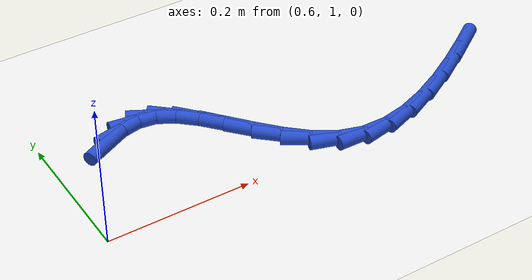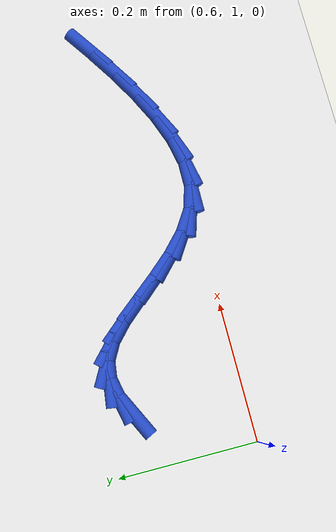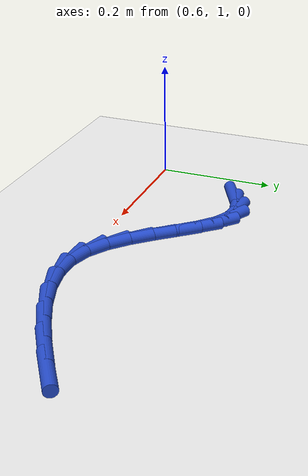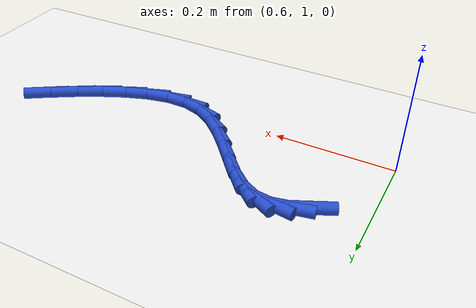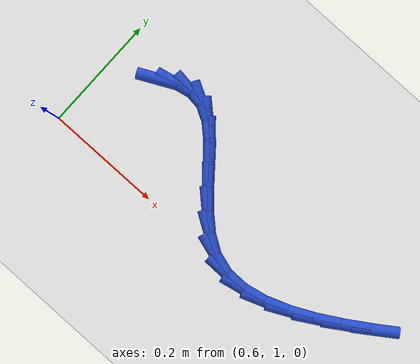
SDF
<sdf version="1.6">
 <world name="default">
  <model name="ground_plane">
   <static>1</static>
   <link name="link">
    <collision name="collision">
     <geometry><plane><normal>0 0 1</normal><size>100 100</size></plane></geometry>
     <surface><friction><ode><mu>100</mu><mu2>50</mu2></ode></friction></surface>
    </collision>
    <visual name="visual">
     <cast_shadows>0</cast_shadows>
     <geometry><plane><normal>0 0 1</normal><size>100 100</size></plane></geometry>
     <material>
      <script><uri>file://media/materials/scripts/gazebo.material</uri><name>Gazebo/WhiteGlow</name></script>
     </material>
    </visual>
   </link>
  </model>
  <model name="line">
   <link name="link_38">
    <pose>0.682273726670328 1.1586608633432824 0.01 0 1.57 0.45927800787577494</pose>
    <collision name="collision">
     <geometry><cylinder><radius>0.01</radius><length>0.08</length></cylinder></geometry>
    </collision>
    <visual name="visual">
     <material>
      <script><name>Gazebo/Blue</name><uri>file://media/materials/scripts/gazebo.material</uri></script>
     </material>
     <geometry><cylinder><radius>0.01</radius><length>0.08</length></cylinder></geometry>
    </visual>
   </link>
   <link name="link_39">
    <pose>0.7093233291121132 1.1720382407509526 0.01 0 1.57 0.20950914462414016</pose>
    <collision name="collision">
     <geometry><cylinder><radius>0.01</radius><length>0.08</length></cylinder></geometry>
    </collision>
    <visual name="visual">
     <material>
      <script><name>Gazebo/Blue</name><uri>file://media/materials/scripts/gazebo.material</uri></script>
     </material>
     <geometry><cylinder><radius>0.01</radius><length>0.08</length></cylinder></geometry>
    </visual>
   </link>
   <link name="link_40">
    <pose>0.7356015378231455 1.1776257590105468 0.01 0 1.57 -0.13529735880801397</pose>
    <collision name="collision">
     <geometry><cylinder><radius>0.01</radius><length>0.08</length></cylinder></geometry>
    </collision>
    <visual name="visual">
     <material>
      <script><name>Gazebo/Blue</name><uri>file://media/materials/scripts/gazebo.material</uri></script>
     </material>
     <geometry><cylinder><radius>0.01</radius><length>0.08</length></cylinder></geometry>
    </visual>
   </link>
   <link name="link_41">
    <pose>0.7610194580868641 1.1741656428136353 0.01 0 1.57 -0.5036402263211666</pose>
    <collision name="collision">
     <geometry><cylinder><radius>0.01</radius><length>0.08</length></cylinder></geometry>
    </collision>
    <visual name="visual">
     <material>
      <script><name>Gazebo/Blue</name><uri>file://media/materials/scripts/gazebo.material</uri></script>
     </material>
     <geometry><cylinder><radius>0.01</radius><length>0.08</length></cylinder></geometry>
    </visual>
   </link>
   <link name="link_42">
    <pose>0.7855310765392158 1.1606587956814365 0.01 0 1.57 -0.7426309171887576</pose>
    <collision name="collision">
     <geometry><cylinder><radius>0.01</radius><length>0.08</length></cylinder></geometry>
    </collision>
    <visual name="visual">
     <material>
      <script><name>Gazebo/Blue</name><uri>file://media/materials/scripts/gazebo.material</uri></script>
     </material>
     <geometry><cylinder><radius>0.01</radius><length>0.08</length></cylinder></geometry>
    </visual>
   </link>
   <link name="link_43">
    <pose>0.8095115075055871 1.1386465451531964 0.01 0 1.57 -0.8525757150796696</pose>
    <collision name="collision">
     <geometry><cylinder><radius>0.01</radius><length>0.08</length></cylinder></geometry>
    </collision>
    <visual name="visual">
     <material>
      <script><name>Gazebo/Blue</name><uri>file://media/materials/scripts/gazebo.material</uri></script>
     </material>
     <geometry><cylinder><radius>0.01</radius><length>0.08</length></cylinder></geometry>
    </visual>
   </link>
   <link name="link_44">
    <pose>0.8335748311029957 1.1111117635817012 0.01 0 1.57 -0.8816843196345426</pose>
    <collision name="collision">
     <geometry><cylinder><radius>0.01</radius><length>0.08</length></cylinder></geometry>
    </collision>
    <visual name="visual">
     <material>
      <script><name>Gazebo/Blue</name><uri>file://media/materials/scripts/gazebo.material</uri></script>
     </material>
     <geometry><cylinder><radius>0.01</radius><length>0.08</length></cylinder></geometry>
    </visual>
   </link>
   <link name="link_45">
    <pose>0.8583378680032573 1.0810538555293325 0.01 0 1.57 -0.8482327573708495</pose>
    <collision name="collision">
     <geometry><cylinder><radius>0.01</radius><length>0.08</length></cylinder></geometry>
    </collision>
    <visual name="visual">
     <material>
      <script><name>Gazebo/Blue</name><uri>file://media/materials/scripts/gazebo.material</uri></script>
     </material>
     <geometry><cylinder><radius>0.01</radius><length>0.08</length></cylinder></geometry>
    </visual>
   </link>
   <link name="link_46">
    <pose>0.8844174388781867 1.0514722255584716 0.01 0 1.57 -0.7501758938900057</pose>
    <collision name="collision">
     <geometry><cylinder><radius>0.01</radius><length>0.08</length></cylinder></geometry>
    </collision>
    <visual name="visual">
     <material>
      <script><name>Gazebo/Blue</name><uri>file://media/materials/scripts/gazebo.material</uri></script>
     </material>
     <geometry><cylinder><radius>0.01</radius><length>0.08</length></cylinder></geometry>
    </visual>
   </link>
   <link name="link_47">
    <pose>0.9124303643995991 1.0253662782315007 0.01 0 1.57 -0.5709473359176263</pose>
    <collision name="collision">
     <geometry><cylinder><radius>0.01</radius><length>0.08</length></cylinder></geometry>
    </collision>
    <visual name="visual">
     <material>
      <script><name>Gazebo/Blue</name><uri>file://media/materials/scripts/gazebo.material</uri></script>
     </material>
     <geometry><cylinder><radius>0.01</radius><length>0.08</length></cylinder></geometry>
    </visual>
   </link>
   <link name="link_48">
    <pose>0.9429934652393098 1.005735418110801 0.01 0 1.57 -0.2962546962150804</pose>
    <collision name="collision">
     <geometry><cylinder><radius>0.01</radius><length>0.08</length></cylinder></geometry>
    </collision>
    <visual name="visual">
     <material>
      <script><name>Gazebo/Blue</name><uri>file://media/materials/scripts/gazebo.material</uri></script>
     </material>
     <geometry><cylinder><radius>0.01</radius><length>0.08</length></cylinder></geometry>
    </visual>
   </link>
   <link name="link_49">
    <pose>0.9766861403617633 0.9954511572135784 0.01 0 1.57 -0.010365268480151535</pose>
    <collision name="collision">
     <geometry><cylinder><radius>0.01</radius><length>0.08</length></cylinder></geometry>
    </collision>
    <visual name="visual">
     <material>
      <script><name>Gazebo/Blue</name><uri>file://media/materials/scripts/gazebo.material</uri></script>
     </material>
     <geometry><cylinder><radius>0.01</radius><length>0.08</length></cylinder></geometry>
    </visual>
   </link>
   <link name="link_50">
    <pose>1.0134105531747455 0.9950704851819173 0.01 0 1.57 0.2036394699474693</pose>
    <collision name="collision">
     <geometry><cylinder><radius>0.01</radius><length>0.08</length></cylinder></geometry>
    </collision>
    <visual name="visual">
     <material>
      <script><name>Gazebo/Blue</name><uri>file://media/materials/scripts/gazebo.material</uri></script>
     </material>
     <geometry><cylinder><radius>0.01</radius><length>0.08</length></cylinder></geometry>
    </visual>
   </link>
   <link name="link_51">
    <pose>1.0524801623681805 1.0031384325567623 0.01 0 1.57 0.35291821953378505</pose>
    <collision name="collision">
     <geometry><cylinder><radius>0.01</radius><length>0.08</length></cylinder></geometry>
    </collision>
    <visual name="visual">
     <material>
      <script><name>Gazebo/Blue</name><uri>file://media/materials/scripts/gazebo.material</uri></script>
     </material>
     <geometry><cylinder><radius>0.01</radius><length>0.08</length></cylinder></geometry>
    </visual>
   </link>
   <link name="link_52">
    <pose>1.0931888201002586 1.018133022534349 0.01 0 1.57 0.45551673510175417</pose>
    <collision name="collision">
     <geometry><cylinder><radius>0.01</radius><length>0.08</length></cylinder></geometry>
    </collision>
    <visual name="visual">
     <material>
      <script><name>Gazebo/Blue</name><uri>file://media/materials/scripts/gazebo.material</uri></script>
     </material>
     <geometry><cylinder><radius>0.01</radius><length>0.08</length></cylinder></geometry>
    </visual>
   </link>
   <link name="link_53">
    <pose>1.1348303785291705 1.038532278310914 0.01 0 1.57 0.5255538432778428</pose>
    <collision name="collision">
     <geometry><cylinder><radius>0.01</radius><length>0.08</length></cylinder></geometry>
    </collision>
    <visual name="visual">
     <material>
      <script><name>Gazebo/Blue</name><uri>file://media/materials/scripts/gazebo.material</uri></script>
     </material>
     <geometry><cylinder><radius>0.01</radius><length>0.08</length></cylinder></geometry>
    </visual>
   </link>
   <link name="link_54">
    <pose>1.1766986898131069 1.0628142230826934 0.01 0 1.57 0.5719440878847482</pose>
    <collision name="collision">
     <geometry><cylinder><radius>0.01</radius><length>0.08</length></cylinder></geometry>
    </collision>
    <visual name="visual">
     <material>
      <script><name>Gazebo/Blue</name><uri>file://media/materials/scripts/gazebo.material</uri></script>
     </material>
     <geometry><cylinder><radius>0.01</radius><length>0.08</length></cylinder></geometry>
    </visual>
   </link>
   <link name="link_55">
    <pose>1.2180876061102583 1.089456880045923 0.01 0 1.57 0.5996065504426453</pose>
    <collision name="collision">
     <geometry><cylinder><radius>0.01</radius><length>0.08</length></cylinder></geometry>
    </collision>
    <visual name="visual">
     <material>
      <script><name>Gazebo/Blue</name><uri>file://media/materials/scripts/gazebo.material</uri></script>
     </material>
     <geometry><cylinder><radius>0.01</radius><length>0.08</length></cylinder></geometry>
    </visual>
   </link>
  </model>
 </world>
</sdf>
